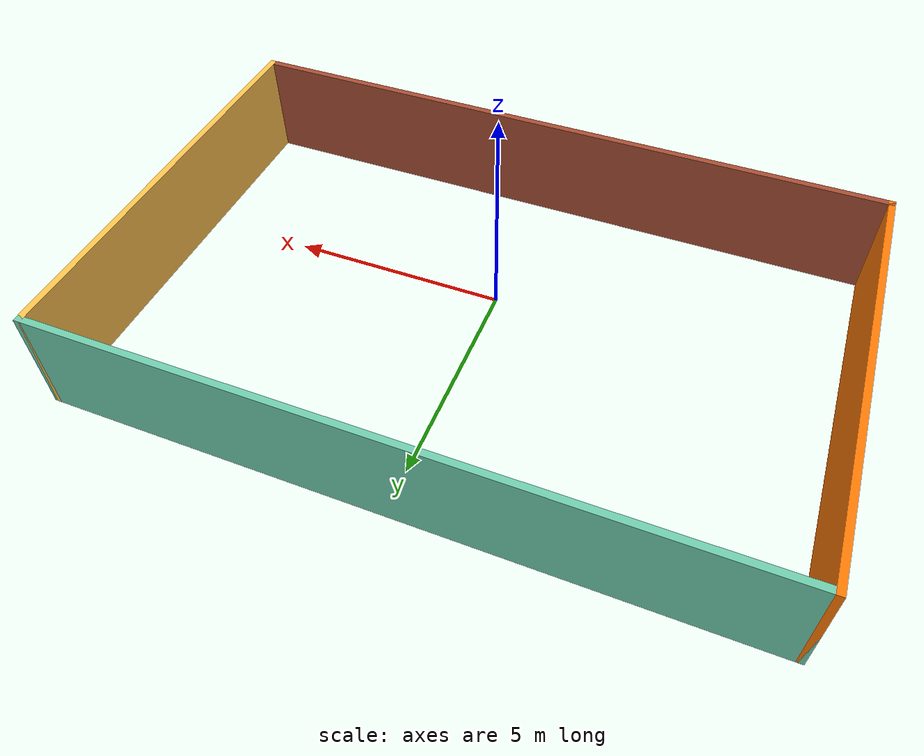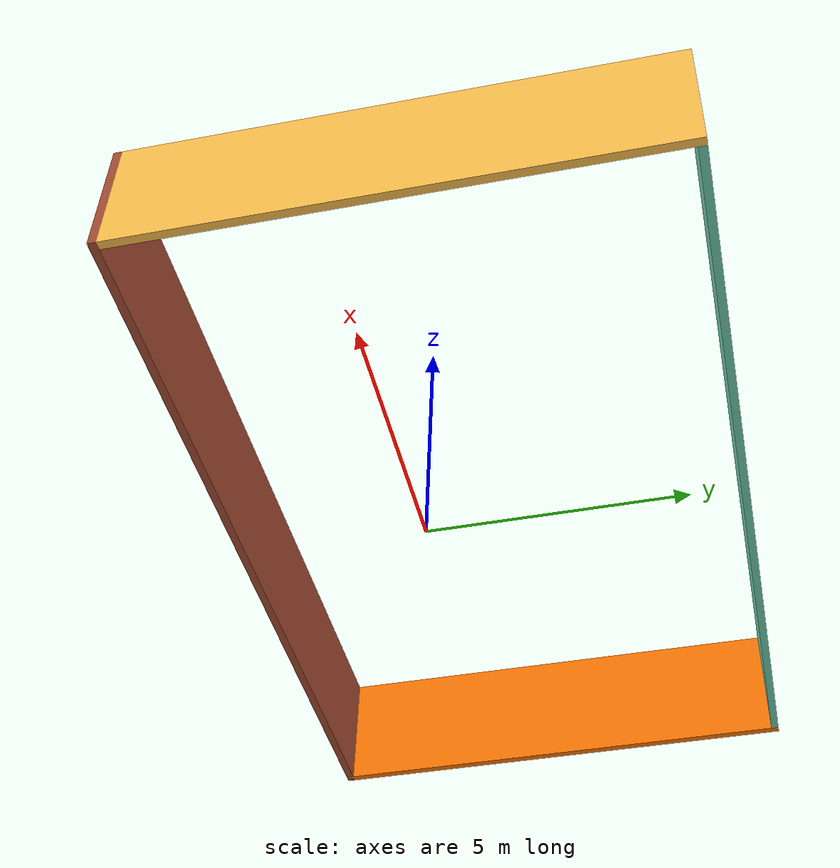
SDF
<?xml version='1.0'?>
<sdf version='1.6'>
  <model name='basic_building'>
    <pose frame=''>-0.127915 1.1951 0 0 -0 0</pose>
    <link name='Wall_10'>
      <collision name='Wall_10_Collision'>
        <geometry>
          <box>
            <size>9.75 0.15 2.5</size>
          </box>
        </geometry>
        <pose frame=''>0 0 1.25 0 -0 0</pose>
      </collision>
      <visual name='Wall_10_Visual'>
        <pose frame=''>0 0 1.25 0 -0 0</pose>
        <geometry>
          <box>
            <size>9.75 0.15 2.5</size>
          </box>
        </geometry>
        <material>
          <script>
            <uri>file://media/materials/scripts/gazebo.material</uri>
            <name>Gazebo/Grey</name>
          </script>
          <ambient>1 0.764706 0.305882 1</ambient>
        </material>
        <meta>
          <layer>0</layer>
        </meta>
      </visual>
      <pose frame=''>7.675 0 0 0 -0 -1.5708</pose>
    </link>
    <link name='Wall_11'>
      <collision name='Wall_11_Collision'>
        <geometry>
          <box>
            <size>15.5 0.15 2.5</size>
          </box>
        </geometry>
        <pose frame=''>0 0 1.25 0 -0 0</pose>
      </collision>
      <visual name='Wall_11_Visual'>
        <pose frame=''>0 0 1.25 0 -0 0</pose>
        <geometry>
          <box>
            <size>15.5 0.15 2.5</size>
          </box>
        </geometry>
        <material>
          <script>
            <uri>file://media/materials/scripts/gazebo.material</uri>
            <name>Gazebo/Bricks</name>
          </script>
          <ambient>1 1 1 1</ambient>
        </material>
        <meta>
          <layer>0</layer>
        </meta>
      </visual>
      <pose frame=''>0 -4.8 0 0 -0 3.14159</pose>
    </link>
    <link name='Wall_12'>
      <collision name='Wall_12_Collision'>
        <geometry>
          <box>
            <size>9.75 0.15 2.5</size>
          </box>
        </geometry>
        <pose frame=''>0 0 1.25 0 -0 0</pose>
      </collision>
      <visual name='Wall_12_Visual'>
        <pose frame=''>0 0 1.25 0 -0 0</pose>
        <geometry>
          <box>
            <size>9.75 0.15 2.5</size>
          </box>
        </geometry>
        <material>
          <script>
            <uri>file://media/materials/scripts/gazebo.material</uri>
            <name>Gazebo/Grey</name>
          </script>
          <ambient>0.996078 0.47451 0.0196078 1</ambient>
        </material>
        <meta>
          <layer>0</layer>
        </meta>
      </visual>
      <pose frame=''>-7.675 0 0 0 -0 1.5708</pose>
    </link>
    <link name='Wall_9'>
      <collision name='Wall_9_Collision'>
        <geometry>
          <box>
            <size>15.5 0.15 2.5</size>
          </box>
        </geometry>
        <pose frame=''>0 0 1.25 0 -0 0</pose>
      </collision>
      <visual name='Wall_9_Visual'>
        <pose frame=''>0 0 1.25 0 -0 0</pose>
        <geometry>
          <box>
            <size>15.5 0.15 2.5</size>
          </box>
        </geometry>
        <material>
          <script>
            <uri>file://media/materials/scripts/gazebo.material</uri>
            <name>Gazebo/Grey</name>
          </script>
          <ambient>0.435294 0.796078 0.67451 1</ambient>
        </material>
        <meta>
          <layer>0</layer>
        </meta>
      </visual>
      <pose frame=''>0 4.8 0 0 -0 0</pose>
    </link>
    <static>1</static>
  </model>
</sdf>
